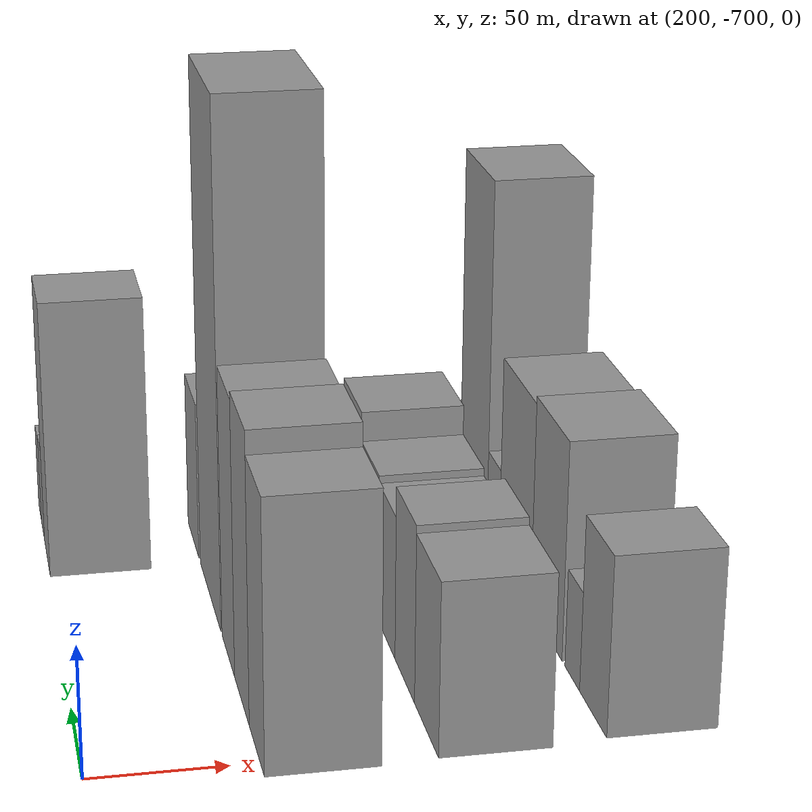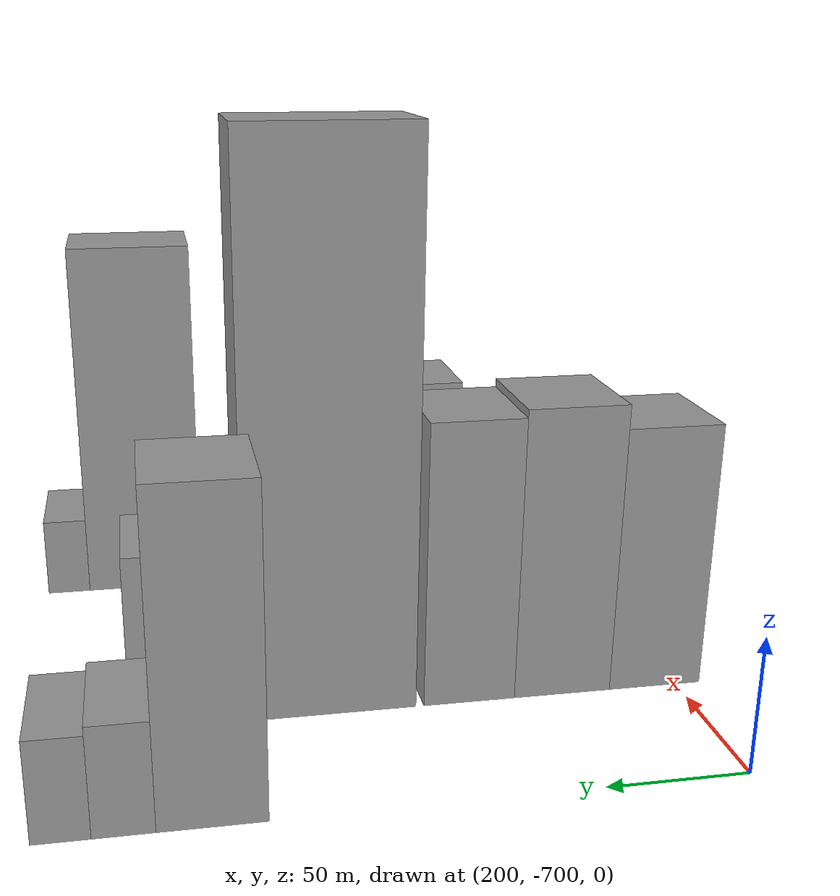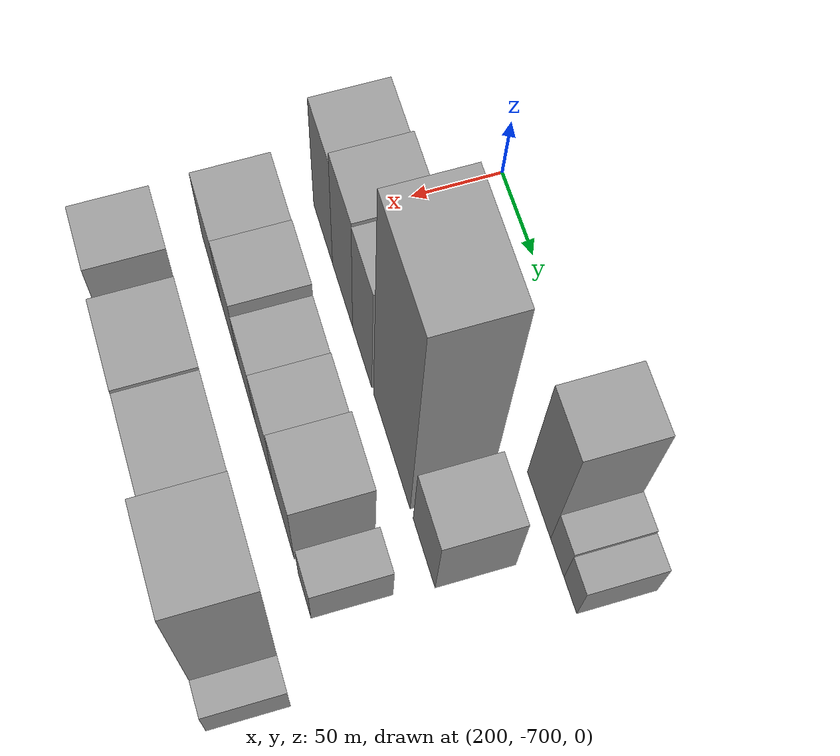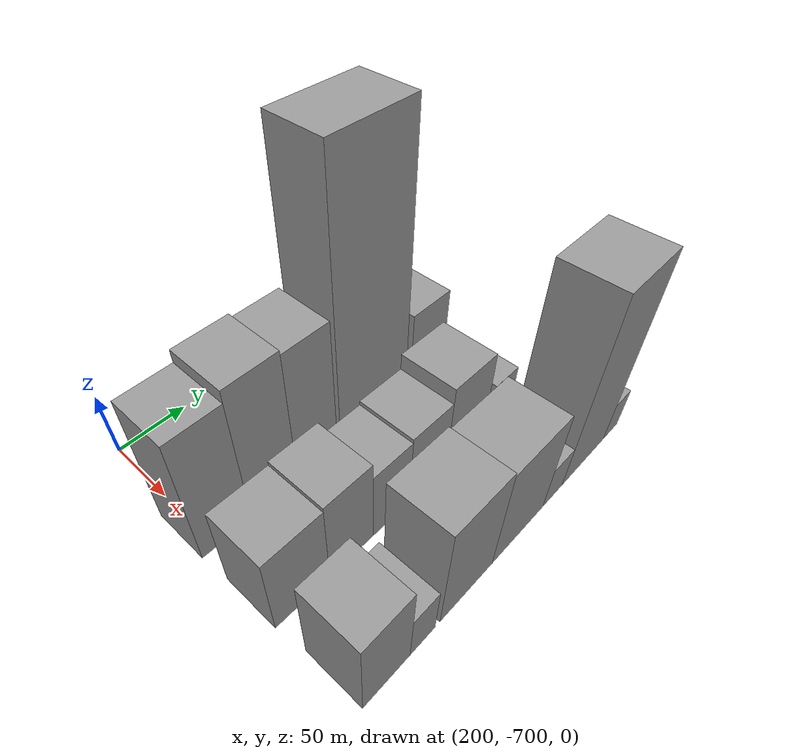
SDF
<sdf version="1.6">
 <world name="default">
  <model name="building_123">
   <static>1</static>
   <pose>220.0000 -522.3479 0 0.000000 0.000000 0.000000</pose>
   <link name="link">
    <pose>0 0 57.00 0 0 0</pose>
    <collision name="collision"><geometry><box><size>40.0000 34.9288 114.0000</size></box></geometry></collision>
    <visual name="visual">
     <cast_shadows>0</cast_shadows>
     <geometry><box><size>40.0000 34.9288 114.0000</size></box></geometry>
     <material>
      <script>
       <uri>model://grey_wall/materials/scripts</uri>
       <uri>model://grey_wall/materials/textures</uri>
       <name>vrc/grey_wall</name>
      </script>
     </material>
    </visual>
   </link>
  </model>
  <model name="building_124">
   <static>1</static>
   <pose>220.0000 -495.1035 0 0.000000 0.000000 0.000000</pose>
   <link name="link">
    <pose>0 0 19.50 0 0 0</pose>
    <collision name="collision"><geometry><box><size>40.0000 19.5599 39.0000</size></box></geometry></collision>
    <visual name="visual">
     <cast_shadows>0</cast_shadows>
     <geometry><box><size>40.0000 19.5599 39.0000</size></box></geometry>
     <material>
      <script>
       <uri>model://grey_wall/materials/scripts</uri>
       <uri>model://grey_wall/materials/textures</uri>
       <name>vrc/grey_wall</name>
      </script>
     </material>
    </visual>
   </link>
  </model>
  <model name="building_125">
   <static>1</static>
   <pose>220.0000 -476.1760 0 0.000000 0.000000 0.000000</pose>
   <link name="link">
    <pose>0 0 18.00 0 0 0</pose>
    <collision name="collision"><geometry><box><size>40.0000 18.2951 36.0000</size></box></geometry></collision>
    <visual name="visual">
     <cast_shadows>0</cast_shadows>
     <geometry><box><size>40.0000 18.2951 36.0000</size></box></geometry>
     <material>
      <script>
       <uri>model://grey_wall/materials/scripts</uri>
       <uri>model://grey_wall/materials/textures</uri>
       <name>vrc/grey_wall</name>
      </script>
     </material>
    </visual>
   </link>
  </model>
  <model name="building_175">
   <static>1</static>
   <pose>280.0000 -691.7377 0 0.000000 0.000000 0.000000</pose>
   <link name="link">
    <pose>0 0 51.00 0 0 0</pose>
    <collision name="collision"><geometry><box><size>40.0000 35.4740 102.0000</size></box></geometry></collision>
    <visual name="visual">
     <cast_shadows>0</cast_shadows>
     <geometry><box><size>40.0000 35.4740 102.0000</size></box></geometry>
     <material>
      <script>
       <uri>model://grey_wall/materials/scripts</uri>
       <uri>model://grey_wall/materials/textures</uri>
       <name>vrc/grey_wall</name>
      </script>
     </material>
    </visual>
   </link>
  </model>
  <model name="building_176">
   <static>1</static>
   <pose>280.0000 -655.6229 0 0.000000 0.000000 0.000000</pose>
   <link name="link">
    <pose>0 0 55.50 0 0 0</pose>
    <collision name="collision"><geometry><box><size>40.0000 36.7555 111.0000</size></box></geometry></collision>
    <visual name="visual">
     <cast_shadows>0</cast_shadows>
     <geometry><box><size>40.0000 36.7555 111.0000</size></box></geometry>
     <material>
      <script>
       <uri>model://grey_wall/materials/scripts</uri>
       <uri>model://grey_wall/materials/textures</uri>
       <name>vrc/grey_wall</name>
      </script>
     </material>
    </visual>
   </link>
  </model>
  <model name="building_177">
   <static>1</static>
   <pose>280.0000 -620.1579 0 0.000000 0.000000 0.000000</pose>
   <link name="link">
    <pose>0 0 54.00 0 0 0</pose>
    <collision name="collision"><geometry><box><size>40.0000 34.1746 108.0000</size></box></geometry></collision>
    <visual name="visual">
     <cast_shadows>0</cast_shadows>
     <geometry><box><size>40.0000 34.1746 108.0000</size></box></geometry>
     <material>
      <script>
       <uri>model://grey_wall/materials/scripts</uri>
       <uri>model://grey_wall/materials/textures</uri>
       <name>vrc/grey_wall</name>
      </script>
     </material>
    </visual>
   </link>
  </model>
  <model name="building_178">
   <static>1</static>
   <pose>280.0000 -568.9653 0 0.000000 0.000000 0.000000</pose>
   <link name="link">
    <pose>0 0 103.50 0 0 0</pose>
    <collision name="collision"><geometry><box><size>40.0000 62.2105 207.0000</size></box></geometry></collision>
    <visual name="visual">
     <cast_shadows>0</cast_shadows>
     <geometry><box><size>40.0000 62.2105 207.0000</size></box></geometry>
     <material>
      <script>
       <uri>model://grey_wall/materials/scripts</uri>
       <uri>model://grey_wall/materials/textures</uri>
       <name>vrc/grey_wall</name>
      </script>
     </material>
    </visual>
   </link>
  </model>
  <model name="building_179">
   <static>1</static>
   <pose>280.0000 -515.1549 0 0.000000 0.000000 0.000000</pose>
   <link name="link">
    <pose>0 0 33.00 0 0 0</pose>
    <collision name="collision"><geometry><box><size>40.0000 35.4104 66.0000</size></box></geometry></collision>
    <visual name="visual">
     <cast_shadows>0</cast_shadows>
     <geometry><box><size>40.0000 35.4104 66.0000</size></box></geometry>
     <material>
      <script>
       <uri>model://grey_wall/materials/scripts</uri>
       <uri>model://grey_wall/materials/textures</uri>
       <name>vrc/grey_wall</name>
      </script>
     </material>
    </visual>
   </link>
  </model>
  <model name="building_233">
   <static>1</static>
   <pose>340.0000 -687.9804 0 0.000000 0.000000 0.000000</pose>
   <link name="link">
    <pose>0 0 33.00 0 0 0</pose>
    <collision name="collision"><geometry><box><size>40.0000 39.3429 66.0000</size></box></geometry></collision>
    <visual name="visual">
     <cast_shadows>0</cast_shadows>
     <geometry><box><size>40.0000 39.3429 66.0000</size></box></geometry>
     <material>
      <script>
       <uri>model://grey_wall/materials/scripts</uri>
       <uri>model://grey_wall/materials/textures</uri>
       <name>vrc/grey_wall</name>
      </script>
     </material>
    </visual>
   </link>
  </model>
  <model name="building_234">
   <static>1</static>
   <pose>340.0000 -651.0139 0 0.000000 0.000000 0.000000</pose>
   <link name="link">
    <pose>0 0 34.50 0 0 0</pose>
    <collision name="collision"><geometry><box><size>40.0000 34.5901 69.0000</size></box></geometry></collision>
    <visual name="visual">
     <cast_shadows>0</cast_shadows>
     <geometry><box><size>40.0000 34.5901 69.0000</size></box></geometry>
     <material>
      <script>
       <uri>model://grey_wall/materials/scripts</uri>
       <uri>model://grey_wall/materials/textures</uri>
       <name>vrc/grey_wall</name>
      </script>
     </material>
    </visual>
   </link>
  </model>
  <model name="building_235">
   <static>1</static>
   <pose>340.0000 -617.9615 0 0.000000 0.000000 0.000000</pose>
   <link name="link">
    <pose>0 0 28.50 0 0 0</pose>
    <collision name="collision"><geometry><box><size>40.0000 31.5147 57.0000</size></box></geometry></collision>
    <visual name="visual">
     <cast_shadows>0</cast_shadows>
     <geometry><box><size>40.0000 31.5147 57.0000</size></box></geometry>
     <material>
      <script>
       <uri>model://grey_wall/materials/scripts</uri>
       <uri>model://grey_wall/materials/textures</uri>
       <name>vrc/grey_wall</name>
      </script>
     </material>
    </visual>
   </link>
  </model>
  <model name="building_236">
   <static>1</static>
   <pose>340.0000 -584.9547 0 0.000000 0.000000 0.000000</pose>
   <link name="link">
    <pose>0 0 30.00 0 0 0</pose>
    <collision name="collision"><geometry><box><size>40.0000 34.4989 60.0000</size></box></geometry></collision>
    <visual name="visual">
     <cast_shadows>0</cast_shadows>
     <geometry><box><size>40.0000 34.4989 60.0000</size></box></geometry>
     <material>
      <script>
       <uri>model://grey_wall/materials/scripts</uri>
       <uri>model://grey_wall/materials/textures</uri>
       <name>vrc/grey_wall</name>
      </script>
     </material>
    </visual>
   </link>
  </model>
  <model name="building_237">
   <static>1</static>
   <pose>340.0000 -548.6157 0 0.000000 0.000000 0.000000</pose>
   <link name="link">
    <pose>0 0 36.00 0 0 0</pose>
    <collision name="collision"><geometry><box><size>40.0000 38.1792 72.0000</size></box></geometry></collision>
    <visual name="visual">
     <cast_shadows>0</cast_shadows>
     <geometry><box><size>40.0000 38.1792 72.0000</size></box></geometry>
     <material>
      <script>
       <uri>model://grey_wall/materials/scripts</uri>
       <uri>model://grey_wall/materials/textures</uri>
       <name>vrc/grey_wall</name>
      </script>
     </material>
    </visual>
   </link>
  </model>
  <model name="building_238">
   <static>1</static>
   <pose>340.0000 -511.1821 0 0.000000 0.000000 0.000000</pose>
   <link name="link">
    <pose>0 0 19.50 0 0 0</pose>
    <collision name="collision"><geometry><box><size>40.0000 22.6880 39.0000</size></box></geometry></collision>
    <visual name="visual">
     <cast_shadows>0</cast_shadows>
     <geometry><box><size>40.0000 22.6880 39.0000</size></box></geometry>
     <material>
      <script>
       <uri>model://grey_wall/materials/scripts</uri>
       <uri>model://grey_wall/materials/textures</uri>
       <name>vrc/grey_wall</name>
      </script>
     </material>
    </visual>
   </link>
  </model>
  <model name="building_283">
   <static>1</static>
   <pose>400.0000 -687.3705 0 0.000000 0.000000 0.000000</pose>
   <link name="link">
    <pose>0 0 34.50 0 0 0</pose>
    <collision name="collision"><geometry><box><size>40.0000 34.5454 69.0000</size></box></geometry></collision>
    <visual name="visual">
     <cast_shadows>0</cast_shadows>
     <geometry><box><size>40.0000 34.5454 69.0000</size></box></geometry>
     <material>
      <script>
       <uri>model://grey_wall/materials/scripts</uri>
       <uri>model://grey_wall/materials/textures</uri>
       <name>vrc/grey_wall</name>
      </script>
     </material>
    </visual>
   </link>
  </model>
  <model name="building_284">
   <static>1</static>
   <pose>400.0000 -660.2401 0 0.000000 0.000000 0.000000</pose>
   <link name="link">
    <pose>0 0 19.50 0 0 0</pose>
    <collision name="collision"><geometry><box><size>40.0000 19.7153 39.0000</size></box></geometry></collision>
    <visual name="visual">
     <cast_shadows>0</cast_shadows>
     <geometry><box><size>40.0000 19.7153 39.0000</size></box></geometry>
     <material>
      <script>
       <uri>model://grey_wall/materials/scripts</uri>
       <uri>model://grey_wall/materials/textures</uri>
       <name>vrc/grey_wall</name>
      </script>
     </material>
    </visual>
   </link>
  </model>
  <model name="building_285">
   <static>1</static>
   <pose>400.0000 -623.5975 0 0.000000 0.000000 0.000000</pose>
   <link name="link">
    <pose>0 0 43.50 0 0 0</pose>
    <collision name="collision"><geometry><box><size>40.0000 45.5698 87.0000</size></box></geometry></collision>
    <visual name="visual">
     <cast_shadows>0</cast_shadows>
     <geometry><box><size>40.0000 45.5698 87.0000</size></box></geometry>
     <material>
      <script>
       <uri>model://grey_wall/materials/scripts</uri>
       <uri>model://grey_wall/materials/textures</uri>
       <name>vrc/grey_wall</name>
      </script>
     </material>
    </visual>
   </link>
  </model>
  <model name="building_286">
   <static>1</static>
   <pose>400.0000 -575.6392 0 0.000000 0.000000 0.000000</pose>
   <link name="link">
    <pose>0 0 42.00 0 0 0</pose>
    <collision name="collision"><geometry><box><size>40.0000 50.3468 84.0000</size></box></geometry></collision>
    <visual name="visual">
     <cast_shadows>0</cast_shadows>
     <geometry><box><size>40.0000 50.3468 84.0000</size></box></geometry>
     <material>
      <script>
       <uri>model://grey_wall/materials/scripts</uri>
       <uri>model://grey_wall/materials/textures</uri>
       <name>vrc/grey_wall</name>
      </script>
     </material>
    </visual>
   </link>
  </model>
  <model name="building_287">
   <static>1</static>
   <pose>400.0000 -539.9291 0 0.000000 0.000000 0.000000</pose>
   <link name="link">
    <pose>0 0 18.00 0 0 0</pose>
    <collision name="collision"><geometry><box><size>40.0000 21.0735 36.0000</size></box></geometry></collision>
    <visual name="visual">
     <cast_shadows>0</cast_shadows>
     <geometry><box><size>40.0000 21.0735 36.0000</size></box></geometry>
     <material>
      <script>
       <uri>model://grey_wall/materials/scripts</uri>
       <uri>model://grey_wall/materials/textures</uri>
       <name>vrc/grey_wall</name>
      </script>
     </material>
    </visual>
   </link>
  </model>
  <model name="building_288">
   <static>1</static>
   <pose>400.0000 -504.9818 0 0.000000 0.000000 0.000000</pose>
   <link name="link">
    <pose>0 0 75.00 0 0 0</pose>
    <collision name="collision"><geometry><box><size>40.0000 48.8210 150.0000</size></box></geometry></collision>
    <visual name="visual">
     <cast_shadows>0</cast_shadows>
     <geometry><box><size>40.0000 48.8210 150.0000</size></box></geometry>
     <material>
      <script>
       <uri>model://grey_wall/materials/scripts</uri>
       <uri>model://grey_wall/materials/textures</uri>
       <name>vrc/grey_wall</name>
      </script>
     </material>
    </visual>
   </link>
  </model>
  <model name="building_289">
   <static>1</static>
   <pose>400.0000 -471.7902 0 0.000000 0.000000 0.000000</pose>
   <link name="link">
    <pose>0 0 16.50 0 0 0</pose>
    <collision name="collision"><geometry><box><size>40.0000 17.5622 33.0000</size></box></geometry></collision>
    <visual name="visual">
     <cast_shadows>0</cast_shadows>
     <geometry><box><size>40.0000 17.5622 33.0000</size></box></geometry>
     <material>
      <script>
       <uri>model://grey_wall/materials/scripts</uri>
       <uri>model://grey_wall/materials/textures</uri>
       <name>vrc/grey_wall</name>
      </script>
     </material>
    </visual>
   </link>
  </model>
 </world>
</sdf>
